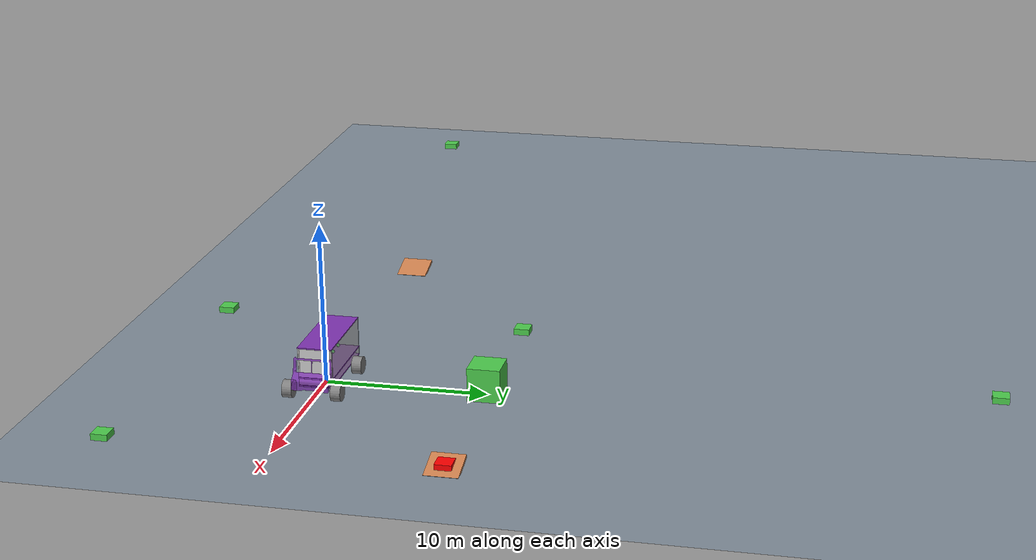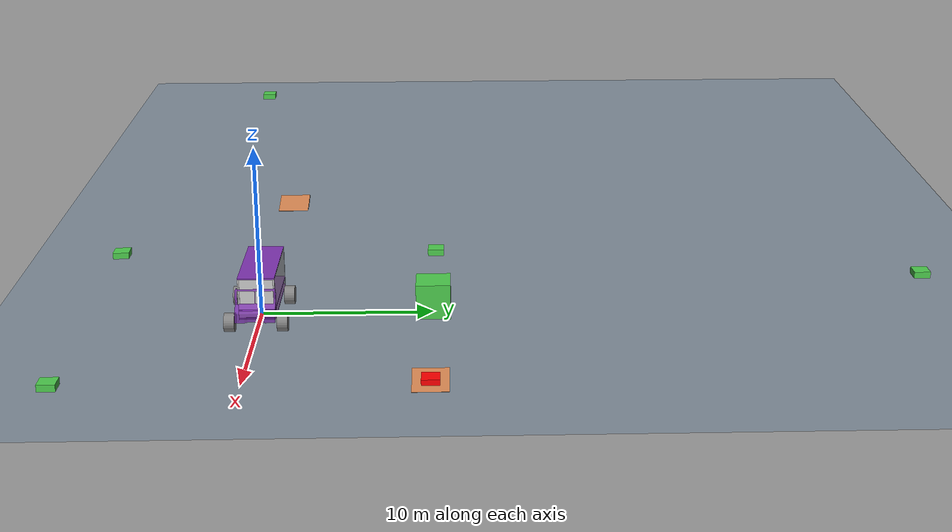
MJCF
<!--
목적 : (차량 모델 분리) 부분 트럭 모델
작성자 : 김준호
최초 작성일자 : 2025-05-10
수정자 : 김준호
최종 수정일자 : 2025-05-10
-->
<mujoco>
  <compiler inertiafromgeom="true"/>
  <option timestep="0.001" gravity="0 0 -9.81"/>

  <asset>
    <texture name="grid" type="2d" builtin="checker"
             rgb1="0.2 0.3 0.4" rgb2="0.8 0.8 0.8"
             width="512" height="512"/>
    <material name="grid_mat" texture="grid" texrepeat="5 5"
              specular="0.3" shininess="0.3"/>
    <texture name="wheel_pattern" type="2d" builtin="checker"
             rgb1="1 1 1" rgb2="0 0 0"
             width="64" height="64"/>
    <material name="wheel_mat" texture="wheel_pattern" texrepeat="8 1"
              specular="0.5" shininess="0.5"/>
    <mesh name="VAN_Front_mesh" file="VAN_Front.stl" scale="0.025 0.02 0.025" maxhullvert="100"/>
  </asset>

  <worldbody>
    <light directional="true" diffuse=".8 .8 .8" specular="0.2 0.2 0.2" pos="0 0 4" dir="0 0 -1"/>

    <!-- 바닥: 충돌용 평면 -->
    <geom name="floor" type="plane" size="100 100 0.1"
          material="grid_mat"
          friction="1.0 0.02 0.005"
          contype="1" conaffinity="1" condim="3"/>

    <!-- 차량 본체 + 바퀴 정의 -->
    <body name="chassis" pos="0 0 .5" euler="0 0 0">
      <joint name="root" type="free"/>
      <geom name="chassis" type="box" size="2.7 1.05 0.04" pos="-0.7 0 0" rgba="0.5 0.2 0.7 1" mass="1500" friction="1 0.5 0.5"/>
      <geom name="weight" type="box" size=".1 .1 .1" pos="-1.7 0 0" rgba="1 0.1 0.1 1" mass="1000" friction="1 0.5 0.5"/>
      <geom name="chassis2" type="box" size="2.7 1.05 0.04" pos="-0.7 0 0.5" rgba="0.5 0.2 0.7 1" mass="1500" friction="1 0.5 0.5"/>
      <geom name="wall_Left" type="box" size="2.7 0.04 1.2" pos="-.7 1 1.2" rgba="0.8 0.8 0.8 0.7" mass="100" friction="1 0.5 0.5"/>
      <geom name="wall_Right" type="box" size="2.7 0.04 1.2" pos="-.7 -1 1.2" rgba="0.8 0.8 0.8 0.7" mass="100" friction="1 0.5 0.5"/>
      <geom name="wall_Back" type="box" size="0.04 1.05 1.2" pos="-3.35 0 1.2" rgba="0.2 0.2 0.2 0.3" mass="100" friction="1 0.5 0.5"/>
      <geom name="wall_Front" type="box" size="0.04 1.05 1.2" pos="1.9 0 1.2" rgba="0.8 0.8 0.8 1" mass="100" friction="1 0.5 0.5"/>
      <geom name="ceiling" type="box" size="2.7 1.05 0.04" pos="-0.7 0 2.4" rgba="0.5 0.2 0.7 1" mass="100" friction="1 0.5 0.5"/>
      <geom name="VAN_Front" type="mesh" mesh="VAN_Front_mesh" pos="2.6 0 0.2" euler="0 0 -90" rgba="0.5 0.2 0.7 0.8" mass="500" friction="1 0.5 0.5"/>

      <!-- 앞왼쪽 바퀴 -->
      <body name="front_left_susp" pos="2.5 1.5 0.5">
        <inertial pos="0 0 0" mass="5" diaginertia="0.1 0.1 0.1"/>
        <joint name="fl_susp" type="slide" axis="0 0 1"
                range="-0.15 0.05" ref="0.05"
                stiffness="200000" damping="8000"/>
        <body name="front_left_wheel" pos="0 0 -.5">
          <joint name="fl_steer" type="hinge" axis="0 0 1" range="-0.6 0.6"/>
          <joint name="fl_wheel" type="hinge" axis="0 1 0"/>
          <geom name="fl_geom" type="cylinder" size="0.540 0.300"
                euler="90 0 0" material="wheel_mat"
                mass="30" friction="2.0 0.02 0.005"
                solref="0.02 1" solimp="0.9 0.95 0.01 0.5 2"
                contype="1" conaffinity="1" condim="3"
                margin="0.001" gap="0.0001"/>
          <site name="fl_site" pos="0 0 -0.7" size="0.01" group="3"/>
        </body>
      </body>

      <!-- 앞오른쪽 바퀴 -->
      <body name="front_right_susp" pos="2.5 -1.5 0.5">
        <inertial pos="0 0 0" mass="5" diaginertia="0.1 0.1 0.1"/>
        <joint name="fr_susp" type="slide" axis="0 0 1"
                range="-0.15 0.05" ref="0.05"
                stiffness="200000" damping="8000"/>
        <body name="front_right_wheel" pos="0 0 -.5">
          <joint name="fr_steer" type="hinge" axis="0 0 1" range="-0.6 0.6"/>
          <joint name="fr_wheel" type="hinge" axis="0 1 0"/>
          <geom name="fr_geom" type="cylinder" size="0.540 0.300"
                euler="90 0 0" material="wheel_mat"
                mass="30" friction="2.0 0.02 0.005"
                solref="0.02 1" solimp="0.9 0.95 0.01 0.5 2"
                contype="1" conaffinity="1" condim="3"
                margin="0.001" gap="0.0001"/>
          <site name="fr_site" pos="0 0 -0.7" size="0.01" group="3"/>
        </body>
      </body>

      <!-- 뒤왼쪽 바퀴 -->
      <body name="rear_left_susp" pos="-1.7 1.5 0.5">
        <inertial pos="0 0 0" mass="5" diaginertia="0.1 0.1 0.1"/>
        <joint name="rl_susp" type="slide" axis="0 0 1"
              range="-0.15 0.05" ref="0.05"
              stiffness="300000" damping="8000"/>
        <body name="rear_left_wheel" pos="0 0 -.5">
          <joint name="rl_wheel" type="hinge" axis="0 1 0"/>
          <geom name="rl_geom" type="cylinder" size="0.540 0.300"
              euler="90 0 0" material="wheel_mat"
              mass="30" friction="2.0 0.02 0.005"
              solref="0.02 1" solimp="0.9 0.95 0.01 0.5 2"
              contype="1" conaffinity="1" condim="3"
              margin="0.001" gap="0.0001"/>
          <site name="rl_site" pos="0 0 -0.7" size="0.01" group="3"/>
        </body>
      </body>

      <!-- 뒤오른쪽 바퀴 -->
      <body name="rear_right_susp" pos="-1.7 -1.5 0.5">
        <inertial pos="0 0 0" mass="5" diaginertia="0.1 0.1 0.1"/>
        <joint name="rr_susp" type="slide" axis="0 0 1"
              range="-0.15 0.05" ref="0.05"
              stiffness="300000" damping="8000"/>
        <body name="rear_right_wheel" pos="0 0 -.5">
          <joint name="rr_wheel" type="hinge" axis="0 1 0"/>
          <geom name="rr_geom" type="cylinder" size="0.540 0.300"
              euler="90 0 0" material="wheel_mat"
              mass="30" friction="2.0 0.02 0.005"
              solref="0.02 1" solimp="0.9 0.95 0.01 0.5 2"
              contype="1" conaffinity="1" condim="3"
              margin="0.001" gap="0.0001"/>
          <site name="rr_site" pos="0 0 -0.7" size="0.01" group="3"/>
        </body>
      </body>
    </body>

    <!-- 기존 점프대 및 장애물 -->
    <geom name="obstacle" type="box" pos="0 10 0"
          size="1 1 2" rgba="0.3 0.8 0.3 1" friction="1 0.5 0.5"
          contype="1" conaffinity="1" condim="3"/>

    <geom name="jump_ramp1" type="box" pos="-20 0 0.1"
          size="1 1 0.1" euler="0 15 0"
          rgba="0.8 0.5 0.3 1" friction="1 0.5 0.5"
          contype="1" conaffinity="1" condim="3"/>
    <geom name="jump_ramp2" type="box" pos="10 10 0.1"
          size="1 1 0.1" euler="0 15 0"
          rgba="0.8 0.5 0.3 1" friction="1 0.5 0.5"
          contype="1" conaffinity="1" condim="3"/>

    <geom name="obstacle1" type="box" pos="-50 -5 0.2"
          size="0.5 0.5 0.2" rgba="0.3 0.8 0.3 1" friction="1 0.5 0.5"
          contype="1" conaffinity="1" condim="3"/>
    <geom name="obstacle2" type="box" pos="-5 40 0.2"
          size="0.5 0.5 0.2" rgba="0.3 0.8 0.3 1" friction="1 0.5 0.5"
          contype="1" conaffinity="1" condim="3"/>
    <geom name="obstacle3" type="box" pos="10 10 0.2"
          size="0.5 0.5 0.2" rgba="1 0 0 1" friction="1 0.5 0.5"
          contype="1" conaffinity="1" condim="3"/>
    <geom name="obstacle4" type="box" pos="10 -10 0.2"
          size="0.5 0.5 0.2" rgba="0.3 0.8 0.3 1" friction="1 0.5 0.5"
          contype="1" conaffinity="1" condim="3"/>
    <geom name="obstacle5" type="box" pos="-10 10 0.2"
          size="0.5 0.5 0.2" rgba="0.3 0.8 0.3 1" friction="1 0.5 0.5"
          contype="1" conaffinity="1" condim="3"/>
    <geom name="obstacle6" type="box" pos="-10 -10 0.2"
          size="0.5 0.5 0.2" rgba="0.3 0.8 0.3 1" friction="1 0.5 0.5"
          contype="1" conaffinity="1" condim="3"/>

    <!-- 수화물 공 9개 -->
    <body name="sphere_1" pos="-1 -.5 2">
      <joint name="sphere_rot_1" type="free"/>
      <geom size="0.1 0.1 0.1" type="sphere" rgba="0.1 0.9 0.2 1" mass="5" contype="1" conaffinity="1" friction="0.04 0.04 0.04"/>
    </body>
    <body name="sphere_2" pos="0 -.5 2">
      <joint name="sphere_rot_2" type="free"/>
      <geom size="0.1 0.1 0.1" type="sphere" rgba="0.1 0.9 0.2 1" mass="5" contype="1" conaffinity="1" friction="0.04 0.04 0.04"/>
    </body>
    <body name="sphere_3" pos="1 -.5 2">
      <joint name="sphere_rot_3" type="free"/>
      <geom size="0.1 0.1 0.1" type="sphere" rgba="0.1 0.9 0.2 1" mass="5" contype="1" conaffinity="1" friction="0.04 0.04 0.04"/>
    </body>
    <body name="sphere_4" pos="-1 0 2">
      <joint name="sphere_rot_4" type="free"/>
      <geom size="0.1 0.1 0.1" type="sphere" rgba="0.1 0.9 0.2 1" mass="5" contype="1" conaffinity="1" friction="0.04 0.04 0.04"/>
    </body>
    <body name="sphere_5" pos="0 0 2">
      <joint name="sphere_rot_5" type="free"/>
      <geom size="0.1 0.1 0.1" type="sphere" rgba="0.1 0.9 0.2 1" mass="5" contype="1" conaffinity="1" friction="0.04 0.04 0.04"/>
    </body>
    <body name="sphere_6" pos="1 0 2">
      <joint name="sphere_rot_6" type="free"/>
      <geom size="0.1 0.1 0.1" type="sphere" rgba="0.1 0.9 0.2 1" mass="5" contype="1" conaffinity="1" friction="0.04 0.04 0.04"/>
    </body>
    <body name="sphere_7" pos="-1 .5 2">
      <joint name="sphere_rot_7" type="free"/>
      <geom size="0.1 0.1 0.1" type="sphere" rgba="0.1 0.9 0.2 1" mass="5" contype="1" conaffinity="1" friction="0.04 0.04 0.04"/>
    </body>
    <body name="sphere_8" pos="0 .5 2">
      <joint name="sphere_rot_8" type="free"/>
      <geom size="0.1 0.1 0.1" type="sphere" rgba="0.1 0.9 0.2 1" mass="5" contype="1" conaffinity="1" friction="0.04 0.04 0.04"/>
    </body>
    <body name="sphere_9" pos="1 .5 2">
      <joint name="sphere_rot_9" type="free"/>
      <geom size="0.1 0.1 0.1" type="sphere" rgba="0.1 0.9 0.2 1" mass="5" contype="1" conaffinity="1" friction="0.04 0.04 0.04"/>
    </body>
  </worldbody>

  <!-- 액츄에이터 (바퀴 동력 및 조향) -->
  <actuator>
    <!-- 구동 -->
    <motor name="rl_drive" joint="rl_wheel" ctrlrange="-2000 2000" gear="6"/>   <!--권장토크 4천~5천 2000*3 = 6000-->
    <motor name="rr_drive" joint="rr_wheel" ctrlrange="-2000 2000" gear="6"/>
    <!-- 브레이크 -->
    <motor name="rl_brake" joint="rl_wheel" ctrlrange="-3000 3000" gear="5"/>
    <motor name="rr_brake" joint="rr_wheel" ctrlrange="-3000 3000" gear="5"/>
    <motor name="fl_brake" joint="fl_wheel" ctrlrange="-3000 3000" gear="5"/>
    <motor name="fr_brake" joint="fr_wheel" ctrlrange="-3000 3000" gear="5"/>
    <!-- 조향 -->
    <motor name="fl_steer_motor" joint="fl_steer" ctrlrange="-200 200" gear="40"/>   <!--권장토크 2천 200*20 = 4000-->
    <motor name="fr_steer_motor" joint="fr_steer" ctrlrange="-200 200" gear="40"/>
  </actuator>

  <!-- 힘 측정 센서-->
  <sensor>
    <force name="fl_force" site="fl_site"/>
    <force name="fr_force" site="fr_site"/>
    <force name="rl_force" site="rl_site"/>
    <force name="rr_force" site="rr_site"/>
    <jointvel name="fl_angular_velocity_sensor" joint="fl_wheel"/>
    <jointvel name="fr_angular_velocity_sensor" joint="fr_wheel"/>
    <jointvel name="rl_angular_velocity_sensor" joint="rl_wheel"/>
    <jointvel name="rr_angular_velocity_sensor" joint="rr_wheel"/>
  </sensor>

</mujoco>
